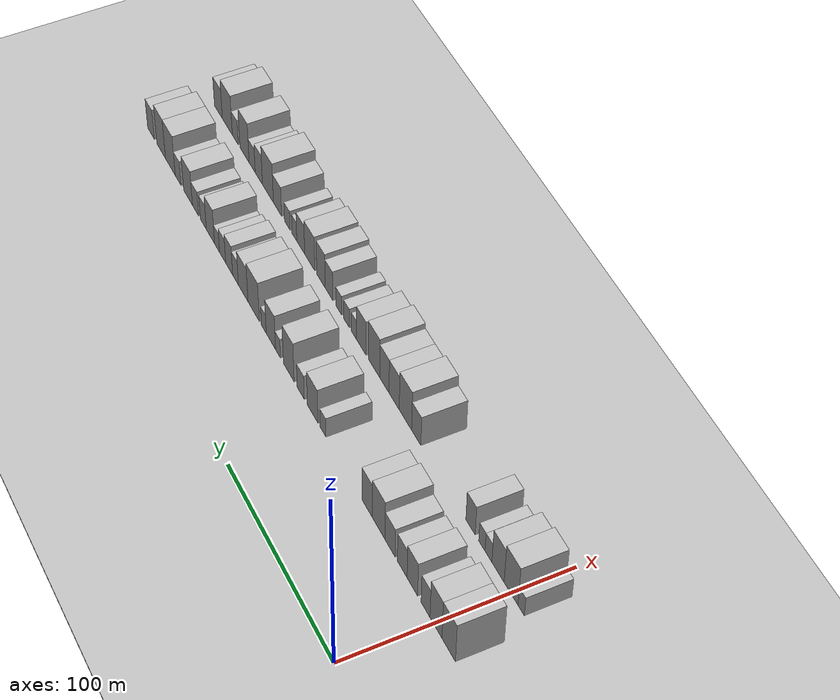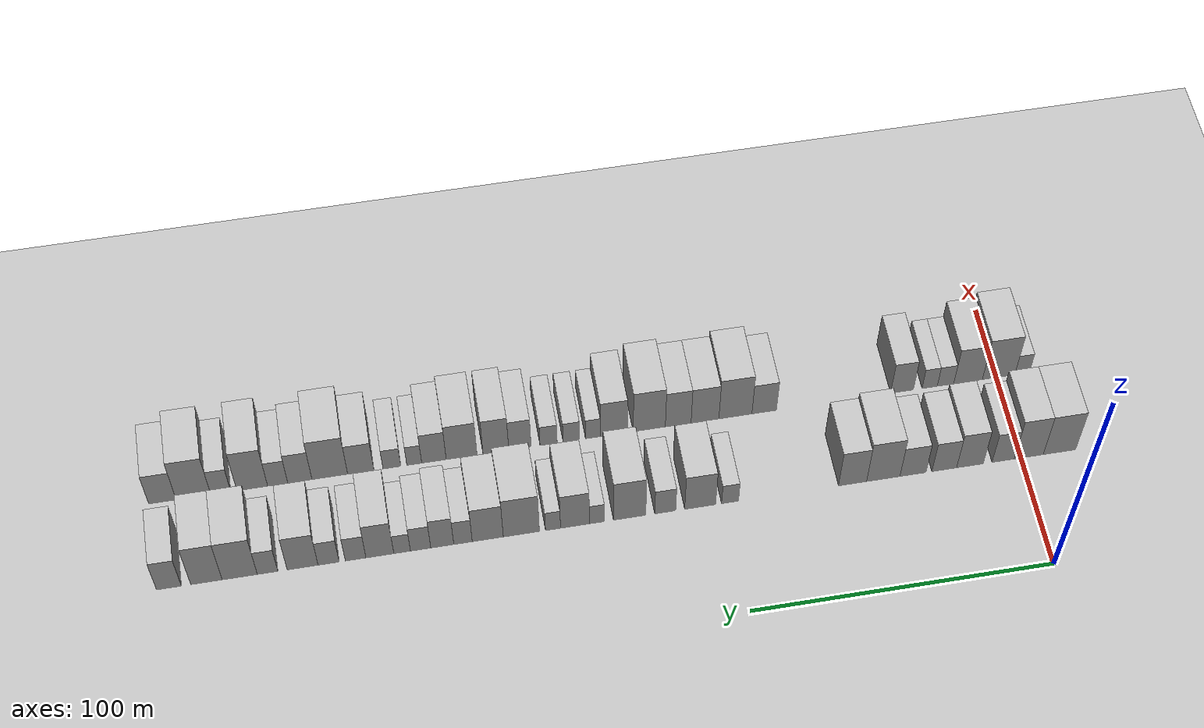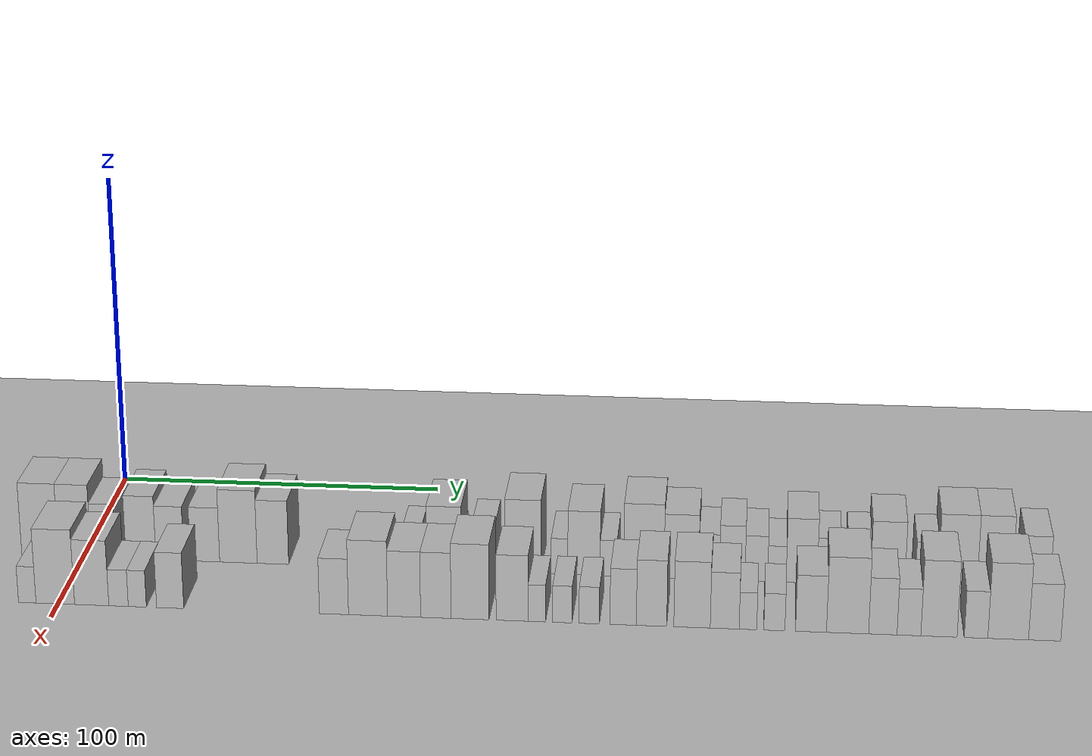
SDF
<sdf version="1.6">
 <world name="default">
  <include><name>ground_plane_1</name><uri>model://HANNAS_ground_plane</uri></include>
  <include>
   <name>ground_plane_2</name>
   <uri>model://HANNAS_ground_plane</uri>
   <pose>100 0 0  0 0 0</pose>
  </include>
  <model name="building_30">
   <static>1</static>
   <pose>50.0000 -12.9464 0 0.000000 0.000000 0.000000</pose>
   <link name="link">
    <pose>0 0 12.00 0 0 0</pose>
    <collision name="collision"><geometry><box><size>20.0000 11.1657 24.0000</size></box></geometry></collision>
    <visual name="visual">
     <cast_shadows>0</cast_shadows>
     <geometry><box><size>20.0000 11.1657 24.0000</size></box></geometry>
     <material>
      <script>
       <uri>model://HANNAS_wall/materials/scripts</uri>
       <uri>model://HANNAS_wall/materials/textures</uri>
       <name>vrc/HANNAS_wall</name>
      </script>
     </material>
    </visual>
   </link>
  </model>
  <model name="building_31">
   <static>1</static>
   <pose>50.0000 -2.3868 0 0.000000 0.000000 0.000000</pose>
   <link name="link">
    <pose>0 0 12.00 0 0 0</pose>
    <collision name="collision"><geometry><box><size>20.0000 9.9533 24.0000</size></box></geometry></collision>
    <visual name="visual">
     <cast_shadows>0</cast_shadows>
     <geometry><box><size>20.0000 9.9533 24.0000</size></box></geometry>
     <material>
      <script>
       <uri>model://HANNAS_wall/materials/scripts</uri>
       <uri>model://HANNAS_wall/materials/textures</uri>
       <name>vrc/HANNAS_wall</name>
      </script>
     </material>
    </visual>
   </link>
  </model>
  <model name="building_32">
   <static>1</static>
   <pose>50.0000 6.3750 0 0.000000 0.000000 0.000000</pose>
   <link name="link">
    <pose>0 0 9.00 0 0 0</pose>
    <collision name="collision"><geometry><box><size>20.0000 7.5704 18.0000</size></box></geometry></collision>
    <visual name="visual">
     <cast_shadows>0</cast_shadows>
     <geometry><box><size>20.0000 7.5704 18.0000</size></box></geometry>
     <material>
      <script>
       <uri>model://HANNAS_wall/materials/scripts</uri>
       <uri>model://HANNAS_wall/materials/textures</uri>
       <name>vrc/HANNAS_wall</name>
      </script>
     </material>
    </visual>
   </link>
  </model>
  <model name="building_33">
   <static>1</static>
   <pose>50.0000 17.7057 0 0.000000 0.000000 0.000000</pose>
   <link name="link">
    <pose>0 0 10.50 0 0 0</pose>
    <collision name="collision"><geometry><box><size>20.0000 9.0910 21.0000</size></box></geometry></collision>
    <visual name="visual">
     <cast_shadows>0</cast_shadows>
     <geometry><box><size>20.0000 9.0910 21.0000</size></box></geometry>
     <material>
      <script>
       <uri>model://HANNAS_wall/materials/scripts</uri>
       <uri>model://HANNAS_wall/materials/textures</uri>
       <name>vrc/HANNAS_wall</name>
      </script>
     </material>
    </visual>
   </link>
  </model>
  <model name="building_34">
   <static>1</static>
   <pose>50.0000 26.4657 0 0.000000 0.000000 0.000000</pose>
   <link name="link">
    <pose>0 0 9.00 0 0 0</pose>
    <collision name="collision"><geometry><box><size>20.0000 8.4290 18.0000</size></box></geometry></collision>
    <visual name="visual">
     <cast_shadows>0</cast_shadows>
     <geometry><box><size>20.0000 8.4290 18.0000</size></box></geometry>
     <material>
      <script>
       <uri>model://HANNAS_wall/materials/scripts</uri>
       <uri>model://HANNAS_wall/materials/textures</uri>
       <name>vrc/HANNAS_wall</name>
      </script>
     </material>
    </visual>
   </link>
  </model>
  <model name="building_35">
   <static>1</static>
   <pose>50.0000 37.0979 0 0.000000 0.000000 0.000000</pose>
   <link name="link">
    <pose>0 0 9.00 0 0 0</pose>
    <collision name="collision"><geometry><box><size>20.0000 8.8355 18.0000</size></box></geometry></collision>
    <visual name="visual">
     <cast_shadows>0</cast_shadows>
     <geometry><box><size>20.0000 8.8355 18.0000</size></box></geometry>
     <material>
      <script>
       <uri>model://HANNAS_wall/materials/scripts</uri>
       <uri>model://HANNAS_wall/materials/textures</uri>
       <name>vrc/HANNAS_wall</name>
      </script>
     </material>
    </visual>
   </link>
  </model>
  <model name="building_36">
   <static>1</static>
   <pose>50.0000 47.1653 0 0.000000 0.000000 0.000000</pose>
   <link name="link">
    <pose>0 0 12.00 0 0 0</pose>
    <collision name="collision"><geometry><box><size>20.0000 11.2991 24.0000</size></box></geometry></collision>
    <visual name="visual">
     <cast_shadows>0</cast_shadows>
     <geometry><box><size>20.0000 11.2991 24.0000</size></box></geometry>
     <material>
      <script>
       <uri>model://HANNAS_wall/materials/scripts</uri>
       <uri>model://HANNAS_wall/materials/textures</uri>
       <name>vrc/HANNAS_wall</name>
      </script>
     </material>
    </visual>
   </link>
  </model>
  <model name="building_37">
   <static>1</static>
   <pose>50.0000 57.5591 0 0.000000 0.000000 0.000000</pose>
   <link name="link">
    <pose>0 0 10.50 0 0 0</pose>
    <collision name="collision"><geometry><box><size>20.0000 9.4886 21.0000</size></box></geometry></collision>
    <visual name="visual">
     <cast_shadows>0</cast_shadows>
     <geometry><box><size>20.0000 9.4886 21.0000</size></box></geometry>
     <material>
      <script>
       <uri>model://HANNAS_wall/materials/scripts</uri>
       <uri>model://HANNAS_wall/materials/textures</uri>
       <name>vrc/HANNAS_wall</name>
      </script>
     </material>
    </visual>
   </link>
  </model>
  <model name="building_38">
   <static>1</static>
   <pose>50.0000 98.7756 0 0.000000 0.000000 0.000000</pose>
   <link name="link">
    <pose>0 0 6.00 0 0 0</pose>
    <collision name="collision"><geometry><box><size>20.0000 5.6481 12.0000</size></box></geometry></collision>
    <visual name="visual">
     <cast_shadows>0</cast_shadows>
     <geometry><box><size>20.0000 5.6481 12.0000</size></box></geometry>
     <material>
      <script>
       <uri>model://HANNAS_wall/materials/scripts</uri>
       <uri>model://HANNAS_wall/materials/textures</uri>
       <name>vrc/HANNAS_wall</name>
      </script>
     </material>
    </visual>
   </link>
  </model>
  <model name="building_39">
   <static>1</static>
   <pose>50.0000 108.7570 0 0.000000 0.000000 0.000000</pose>
   <link name="link">
    <pose>0 0 10.50 0 0 0</pose>
    <collision name="collision"><geometry><box><size>20.0000 10.3148 21.0000</size></box></geometry></collision>
    <visual name="visual">
     <cast_shadows>0</cast_shadows>
     <geometry><box><size>20.0000 10.3148 21.0000</size></box></geometry>
     <material>
      <script>
       <uri>model://HANNAS_wall/materials/scripts</uri>
       <uri>model://HANNAS_wall/materials/textures</uri>
       <name>vrc/HANNAS_wall</name>
      </script>
     </material>
    </visual>
   </link>
  </model>
  <model name="building_40">
   <static>1</static>
   <pose>50.0000 120.3956 0 0.000000 0.000000 0.000000</pose>
   <link name="link">
    <pose>0 0 7.50 0 0 0</pose>
    <collision name="collision"><geometry><box><size>20.0000 6.9623 15.0000</size></box></geometry></collision>
    <visual name="visual">
     <cast_shadows>0</cast_shadows>
     <geometry><box><size>20.0000 6.9623 15.0000</size></box></geometry>
     <material>
      <script>
       <uri>model://HANNAS_wall/materials/scripts</uri>
       <uri>model://HANNAS_wall/materials/textures</uri>
       <name>vrc/HANNAS_wall</name>
      </script>
     </material>
    </visual>
   </link>
  </model>
  <model name="building_41">
   <static>1</static>
   <pose>50.0000 132.2311 0 0.000000 0.000000 0.000000</pose>
   <link name="link">
    <pose>0 0 12.00 0 0 0</pose>
    <collision name="collision"><geometry><box><size>20.0000 10.7086 24.0000</size></box></geometry></collision>
    <visual name="visual">
     <cast_shadows>0</cast_shadows>
     <geometry><box><size>20.0000 10.7086 24.0000</size></box></geometry>
     <material>
      <script>
       <uri>model://HANNAS_wall/materials/scripts</uri>
       <uri>model://HANNAS_wall/materials/textures</uri>
       <name>vrc/HANNAS_wall</name>
      </script>
     </material>
    </visual>
   </link>
  </model>
  <model name="building_42">
   <static>1</static>
   <pose>50.0000 143.0597 0 0.000000 0.000000 0.000000</pose>
   <link name="link">
    <pose>0 0 6.00 0 0 0</pose>
    <collision name="collision"><geometry><box><size>20.0000 4.9486 12.0000</size></box></geometry></collision>
    <visual name="visual">
     <cast_shadows>0</cast_shadows>
     <geometry><box><size>20.0000 4.9486 12.0000</size></box></geometry>
     <material>
      <script>
       <uri>model://HANNAS_wall/materials/scripts</uri>
       <uri>model://HANNAS_wall/materials/textures</uri>
       <name>vrc/HANNAS_wall</name>
      </script>
     </material>
    </visual>
   </link>
  </model>
  <model name="building_43">
   <static>1</static>
   <pose>50.0000 150.3219 0 0.000000 0.000000 0.000000</pose>
   <link name="link">
    <pose>0 0 10.50 0 0 0</pose>
    <collision name="collision"><geometry><box><size>20.0000 9.5759 21.0000</size></box></geometry></collision>
    <visual name="visual">
     <cast_shadows>0</cast_shadows>
     <geometry><box><size>20.0000 9.5759 21.0000</size></box></geometry>
     <material>
      <script>
       <uri>model://HANNAS_wall/materials/scripts</uri>
       <uri>model://HANNAS_wall/materials/textures</uri>
       <name>vrc/HANNAS_wall</name>
      </script>
     </material>
    </visual>
   </link>
  </model>
  <model name="building_44">
   <static>1</static>
   <pose>50.0000 157.5859 0 0.000000 0.000000 0.000000</pose>
   <link name="link">
    <pose>0 0 6.00 0 0 0</pose>
    <collision name="collision"><geometry><box><size>20.0000 4.9522 12.0000</size></box></geometry></collision>
    <visual name="visual">
     <cast_shadows>0</cast_shadows>
     <geometry><box><size>20.0000 4.9522 12.0000</size></box></geometry>
     <material>
      <script>
       <uri>model://HANNAS_wall/materials/scripts</uri>
       <uri>model://HANNAS_wall/materials/textures</uri>
       <name>vrc/HANNAS_wall</name>
      </script>
     </material>
    </visual>
   </link>
  </model>
  <model name="building_45">
   <static>1</static>
   <pose>50.0000 168.0067 0 0.000000 0.000000 0.000000</pose>
   <link name="link">
    <pose>0 0 12.00 0 0 0</pose>
    <collision name="collision"><geometry><box><size>20.0000 11.8894 24.0000</size></box></geometry></collision>
    <visual name="visual">
     <cast_shadows>0</cast_shadows>
     <geometry><box><size>20.0000 11.8894 24.0000</size></box></geometry>
     <material>
      <script>
       <uri>model://HANNAS_wall/materials/scripts</uri>
       <uri>model://HANNAS_wall/materials/textures</uri>
       <name>vrc/HANNAS_wall</name>
      </script>
     </material>
    </visual>
   </link>
  </model>
  <model name="building_46">
   <static>1</static>
   <pose>50.0000 179.0463 0 0.000000 0.000000 0.000000</pose>
   <link name="link">
    <pose>0 0 10.50 0 0 0</pose>
    <collision name="collision"><geometry><box><size>20.0000 10.1898 21.0000</size></box></geometry></collision>
    <visual name="visual">
     <cast_shadows>0</cast_shadows>
     <geometry><box><size>20.0000 10.1898 21.0000</size></box></geometry>
     <material>
      <script>
       <uri>model://HANNAS_wall/materials/scripts</uri>
       <uri>model://HANNAS_wall/materials/textures</uri>
       <name>vrc/HANNAS_wall</name>
      </script>
     </material>
    </visual>
   </link>
  </model>
  <model name="building_47">
   <static>1</static>
   <pose>50.0000 187.1726 0 0.000000 0.000000 0.000000</pose>
   <link name="link">
    <pose>0 0 7.50 0 0 0</pose>
    <collision name="collision"><geometry><box><size>20.0000 6.0628 15.0000</size></box></geometry></collision>
    <visual name="visual">
     <cast_shadows>0</cast_shadows>
     <geometry><box><size>20.0000 6.0628 15.0000</size></box></geometry>
     <material>
      <script>
       <uri>model://HANNAS_wall/materials/scripts</uri>
       <uri>model://HANNAS_wall/materials/textures</uri>
       <name>vrc/HANNAS_wall</name>
      </script>
     </material>
    </visual>
   </link>
  </model>
  <model name="building_48">
   <static>1</static>
   <pose>50.0000 193.9692 0 0.000000 0.000000 0.000000</pose>
   <link name="link">
    <pose>0 0 9.00 0 0 0</pose>
    <collision name="collision"><geometry><box><size>20.0000 7.5304 18.0000</size></box></geometry></collision>
    <visual name="visual">
     <cast_shadows>0</cast_shadows>
     <geometry><box><size>20.0000 7.5304 18.0000</size></box></geometry>
     <material>
      <script>
       <uri>model://HANNAS_wall/materials/scripts</uri>
       <uri>model://HANNAS_wall/materials/textures</uri>
       <name>vrc/HANNAS_wall</name>
      </script>
     </material>
    </visual>
   </link>
  </model>
  <model name="building_49">
   <static>1</static>
   <pose>50.0000 201.0462 0 0.000000 0.000000 0.000000</pose>
   <link name="link">
    <pose>0 0 7.50 0 0 0</pose>
    <collision name="collision"><geometry><box><size>20.0000 6.6235 15.0000</size></box></geometry></collision>
    <visual name="visual">
     <cast_shadows>0</cast_shadows>
     <geometry><box><size>20.0000 6.6235 15.0000</size></box></geometry>
     <material>
      <script>
       <uri>model://HANNAS_wall/materials/scripts</uri>
       <uri>model://HANNAS_wall/materials/textures</uri>
       <name>vrc/HANNAS_wall</name>
      </script>
     </material>
    </visual>
   </link>
  </model>
  <model name="building_50">
   <static>1</static>
   <pose>50.0000 207.0693 0 0.000000 0.000000 0.000000</pose>
   <link name="link">
    <pose>0 0 6.00 0 0 0</pose>
    <collision name="collision"><geometry><box><size>20.0000 5.4227 12.0000</size></box></geometry></collision>
    <visual name="visual">
     <cast_shadows>0</cast_shadows>
     <geometry><box><size>20.0000 5.4227 12.0000</size></box></geometry>
     <material>
      <script>
       <uri>model://HANNAS_wall/materials/scripts</uri>
       <uri>model://HANNAS_wall/materials/textures</uri>
       <name>vrc/HANNAS_wall</name>
      </script>
     </material>
    </visual>
   </link>
  </model>
  <model name="building_51">
   <static>1</static>
   <pose>50.0000 214.3132 0 0.000000 0.000000 0.000000</pose>
   <link name="link">
    <pose>0 0 10.50 0 0 0</pose>
    <collision name="collision"><geometry><box><size>20.0000 9.0652 21.0000</size></box></geometry></collision>
    <visual name="visual">
     <cast_shadows>0</cast_shadows>
     <geometry><box><size>20.0000 9.0652 21.0000</size></box></geometry>
     <material>
      <script>
       <uri>model://HANNAS_wall/materials/scripts</uri>
       <uri>model://HANNAS_wall/materials/textures</uri>
       <name>vrc/HANNAS_wall</name>
      </script>
     </material>
    </visual>
   </link>
  </model>
  <model name="building_52">
   <static>1</static>
   <pose>50.0000 222.1941 0 0.000000 0.000000 0.000000</pose>
   <link name="link">
    <pose>0 0 7.50 0 0 0</pose>
    <collision name="collision"><geometry><box><size>20.0000 6.6967 15.0000</size></box></geometry></collision>
    <visual name="visual">
     <cast_shadows>0</cast_shadows>
     <geometry><box><size>20.0000 6.6967 15.0000</size></box></geometry>
     <material>
      <script>
       <uri>model://HANNAS_wall/materials/scripts</uri>
       <uri>model://HANNAS_wall/materials/textures</uri>
       <name>vrc/HANNAS_wall</name>
      </script>
     </material>
    </visual>
   </link>
  </model>
  <model name="building_53">
   <static>1</static>
   <pose>50.0000 230.9654 0 0.000000 0.000000 0.000000</pose>
   <link name="link">
    <pose>0 0 7.50 0 0 0</pose>
    <collision name="collision"><geometry><box><size>20.0000 6.8459 15.0000</size></box></geometry></collision>
    <visual name="visual">
     <cast_shadows>0</cast_shadows>
     <geometry><box><size>20.0000 6.8459 15.0000</size></box></geometry>
     <material>
      <script>
       <uri>model://HANNAS_wall/materials/scripts</uri>
       <uri>model://HANNAS_wall/materials/textures</uri>
       <name>vrc/HANNAS_wall</name>
      </script>
     </material>
    </visual>
   </link>
  </model>
  <model name="building_54">
   <static>1</static>
   <pose>50.0000 239.3948 0 0.000000 0.000000 0.000000</pose>
   <link name="link">
    <pose>0 0 10.50 0 0 0</pose>
    <collision name="collision"><geometry><box><size>20.0000 10.0129 21.0000</size></box></geometry></collision>
    <visual name="visual">
     <cast_shadows>0</cast_shadows>
     <geometry><box><size>20.0000 10.0129 21.0000</size></box></geometry>
     <material>
      <script>
       <uri>model://HANNAS_wall/materials/scripts</uri>
       <uri>model://HANNAS_wall/materials/textures</uri>
       <name>vrc/HANNAS_wall</name>
      </script>
     </material>
    </visual>
   </link>
  </model>
  <model name="building_55">
   <static>1</static>
   <pose>50.0000 250.7144 0 0.000000 0.000000 0.000000</pose>
   <link name="link">
    <pose>0 0 7.50 0 0 0</pose>
    <collision name="collision"><geometry><box><size>20.0000 6.6265 15.0000</size></box></geometry></collision>
    <visual name="visual">
     <cast_shadows>0</cast_shadows>
     <geometry><box><size>20.0000 6.6265 15.0000</size></box></geometry>
     <material>
      <script>
       <uri>model://HANNAS_wall/materials/scripts</uri>
       <uri>model://HANNAS_wall/materials/textures</uri>
       <name>vrc/HANNAS_wall</name>
      </script>
     </material>
    </visual>
   </link>
  </model>
  <model name="building_56">
   <static>1</static>
   <pose>50.0000 259.6921 0 0.000000 0.000000 0.000000</pose>
   <link name="link">
    <pose>0 0 12.00 0 0 0</pose>
    <collision name="collision"><geometry><box><size>20.0000 11.3289 24.0000</size></box></geometry></collision>
    <visual name="visual">
     <cast_shadows>0</cast_shadows>
     <geometry><box><size>20.0000 11.3289 24.0000</size></box></geometry>
     <material>
      <script>
       <uri>model://HANNAS_wall/materials/scripts</uri>
       <uri>model://HANNAS_wall/materials/textures</uri>
       <name>vrc/HANNAS_wall</name>
      </script>
     </material>
    </visual>
   </link>
  </model>
  <model name="building_57">
   <static>1</static>
   <pose>50.0000 270.4050 0 0.000000 0.000000 0.000000</pose>
   <link name="link">
    <pose>0 0 12.00 0 0 0</pose>
    <collision name="collision"><geometry><box><size>20.0000 10.0969 24.0000</size></box></geometry></collision>
    <visual name="visual">
     <cast_shadows>0</cast_shadows>
     <geometry><box><size>20.0000 10.0969 24.0000</size></box></geometry>
     <material>
      <script>
       <uri>model://HANNAS_wall/materials/scripts</uri>
       <uri>model://HANNAS_wall/materials/textures</uri>
       <name>vrc/HANNAS_wall</name>
      </script>
     </material>
    </visual>
   </link>
  </model>
  <model name="building_58">
   <static>1</static>
   <pose>50.0000 282.4318 0 0.000000 0.000000 0.000000</pose>
   <link name="link">
    <pose>0 0 9.00 0 0 0</pose>
    <collision name="collision"><geometry><box><size>20.0000 7.9568 18.0000</size></box></geometry></collision>
    <visual name="visual">
     <cast_shadows>0</cast_shadows>
     <geometry><box><size>20.0000 7.9568 18.0000</size></box></geometry>
     <material>
      <script>
       <uri>model://HANNAS_wall/materials/scripts</uri>
       <uri>model://HANNAS_wall/materials/textures</uri>
       <name>vrc/HANNAS_wall</name>
      </script>
     </material>
    </visual>
   </link>
  </model>
  <model name="building_88">
   <static>1</static>
   <pose>82.0000 -8.8257 0 0.000000 0.000000 0.000000</pose>
   <link name="link">
    <pose>0 0 6.00 0 0 0</pose>
    <collision name="collision"><geometry><box><size>20.0000 5.1446 12.0000</size></box></geometry></collision>
    <visual name="visual">
     <cast_shadows>0</cast_shadows>
     <geometry><box><size>20.0000 5.1446 12.0000</size></box></geometry>
     <material>
      <script>
       <uri>model://HANNAS_wall/materials/scripts</uri>
       <uri>model://HANNAS_wall/materials/textures</uri>
       <name>vrc/HANNAS_wall</name>
      </script>
     </material>
    </visual>
   </link>
  </model>
  <model name="building_89">
   <static>1</static>
   <pose>82.0000 -0.5891 0 0.000000 0.000000 0.000000</pose>
   <link name="link">
    <pose>0 0 12.00 0 0 0</pose>
    <collision name="collision"><geometry><box><size>20.0000 11.3286 24.0000</size></box></geometry></collision>
    <visual name="visual">
     <cast_shadows>0</cast_shadows>
     <geometry><box><size>20.0000 11.3286 24.0000</size></box></geometry>
     <material>
      <script>
       <uri>model://HANNAS_wall/materials/scripts</uri>
       <uri>model://HANNAS_wall/materials/textures</uri>
       <name>vrc/HANNAS_wall</name>
      </script>
     </material>
    </visual>
   </link>
  </model>
  <model name="building_90">
   <static>1</static>
   <pose>82.0000 10.0945 0 0.000000 0.000000 0.000000</pose>
   <link name="link">
    <pose>0 0 10.50 0 0 0</pose>
    <collision name="collision"><geometry><box><size>20.0000 10.0385 21.0000</size></box></geometry></collision>
    <visual name="visual">
     <cast_shadows>0</cast_shadows>
     <geometry><box><size>20.0000 10.0385 21.0000</size></box></geometry>
     <material>
      <script>
       <uri>model://HANNAS_wall/materials/scripts</uri>
       <uri>model://HANNAS_wall/materials/textures</uri>
       <name>vrc/HANNAS_wall</name>
      </script>
     </material>
    </visual>
   </link>
  </model>
  <model name="building_91">
   <static>1</static>
   <pose>82.0000 17.9602 0 0.000000 0.000000 0.000000</pose>
   <link name="link">
    <pose>0 0 6.00 0 0 0</pose>
    <collision name="collision"><geometry><box><size>20.0000 5.6930 12.0000</size></box></geometry></collision>
    <visual name="visual">
     <cast_shadows>0</cast_shadows>
     <geometry><box><size>20.0000 5.6930 12.0000</size></box></geometry>
     <material>
      <script>
       <uri>model://HANNAS_wall/materials/scripts</uri>
       <uri>model://HANNAS_wall/materials/textures</uri>
       <name>vrc/HANNAS_wall</name>
      </script>
     </material>
    </visual>
   </link>
  </model>
  <model name="building_92">
   <static>1</static>
   <pose>82.0000 23.4496 0 0.000000 0.000000 0.000000</pose>
   <link name="link">
    <pose>0 0 6.00 0 0 0</pose>
    <collision name="collision"><geometry><box><size>20.0000 5.2859 12.0000</size></box></geometry></collision>
    <visual name="visual">
     <cast_shadows>0</cast_shadows>
     <geometry><box><size>20.0000 5.2859 12.0000</size></box></geometry>
     <material>
      <script>
       <uri>model://HANNAS_wall/materials/scripts</uri>
       <uri>model://HANNAS_wall/materials/textures</uri>
       <name>vrc/HANNAS_wall</name>
      </script>
     </material>
    </visual>
   </link>
  </model>
  <model name="building_93">
   <static>1</static>
   <pose>82.0000 33.0569 0 0.000000 0.000000 0.000000</pose>
   <link name="link">
    <pose>0 0 9.00 0 0 0</pose>
    <collision name="collision"><geometry><box><size>20.0000 7.9286 18.0000</size></box></geometry></collision>
    <visual name="visual">
     <cast_shadows>0</cast_shadows>
     <geometry><box><size>20.0000 7.9286 18.0000</size></box></geometry>
     <material>
      <script>
       <uri>model://HANNAS_wall/materials/scripts</uri>
       <uri>model://HANNAS_wall/materials/textures</uri>
       <name>vrc/HANNAS_wall</name>
      </script>
     </material>
    </visual>
   </link>
  </model>
  <model name="building_94">
   <static>1</static>
   <pose>82.0000 80.6333 0 0.000000 0.000000 0.000000</pose>
   <link name="link">
    <pose>0 0 9.00 0 0 0</pose>
    <collision name="collision"><geometry><box><size>20.0000 8.4081 18.0000</size></box></geometry></collision>
    <visual name="visual">
     <cast_shadows>0</cast_shadows>
     <geometry><box><size>20.0000 8.4081 18.0000</size></box></geometry>
     <material>
      <script>
       <uri>model://HANNAS_wall/materials/scripts</uri>
       <uri>model://HANNAS_wall/materials/textures</uri>
       <name>vrc/HANNAS_wall</name>
      </script>
     </material>
    </visual>
   </link>
  </model>
  <model name="building_95">
   <static>1</static>
   <pose>82.0000 90.4932 0 0.000000 0.000000 0.000000</pose>
   <link name="link">
    <pose>0 0 12.00 0 0 0</pose>
    <collision name="collision"><geometry><box><size>20.0000 11.3116 24.0000</size></box></geometry></collision>
    <visual name="visual">
     <cast_shadows>0</cast_shadows>
     <geometry><box><size>20.0000 11.3116 24.0000</size></box></geometry>
     <material>
      <script>
       <uri>model://HANNAS_wall/materials/scripts</uri>
       <uri>model://HANNAS_wall/materials/textures</uri>
       <name>vrc/HANNAS_wall</name>
      </script>
     </material>
    </visual>
   </link>
  </model>
  <model name="building_96">
   <static>1</static>
   <pose>82.0000 100.8941 0 0.000000 0.000000 0.000000</pose>
   <link name="link">
    <pose>0 0 10.50 0 0 0</pose>
    <collision name="collision"><geometry><box><size>20.0000 9.4903 21.0000</size></box></geometry></collision>
    <visual name="visual">
     <cast_shadows>0</cast_shadows>
     <geometry><box><size>20.0000 9.4903 21.0000</size></box></geometry>
     <material>
      <script>
       <uri>model://HANNAS_wall/materials/scripts</uri>
       <uri>model://HANNAS_wall/materials/textures</uri>
       <name>vrc/HANNAS_wall</name>
      </script>
     </material>
    </visual>
   </link>
  </model>
  <model name="building_97">
   <static>1</static>
   <pose>82.0000 110.0233 0 0.000000 0.000000 0.000000</pose>
   <link name="link">
    <pose>0 0 10.50 0 0 0</pose>
    <collision name="collision"><geometry><box><size>20.0000 8.7681 21.0000</size></box></geometry></collision>
    <visual name="visual">
     <cast_shadows>0</cast_shadows>
     <geometry><box><size>20.0000 8.7681 21.0000</size></box></geometry>
     <material>
      <script>
       <uri>model://HANNAS_wall/materials/scripts</uri>
       <uri>model://HANNAS_wall/materials/textures</uri>
       <name>vrc/HANNAS_wall</name>
      </script>
     </material>
    </visual>
   </link>
  </model>
  <model name="building_98">
   <static>1</static>
   <pose>82.0000 119.8668 0 0.000000 0.000000 0.000000</pose>
   <link name="link">
    <pose>0 0 12.00 0 0 0</pose>
    <collision name="collision"><geometry><box><size>20.0000 10.9188 24.0000</size></box></geometry></collision>
    <visual name="visual">
     <cast_shadows>0</cast_shadows>
     <geometry><box><size>20.0000 10.9188 24.0000</size></box></geometry>
     <material>
      <script>
       <uri>model://HANNAS_wall/materials/scripts</uri>
       <uri>model://HANNAS_wall/materials/textures</uri>
       <name>vrc/HANNAS_wall</name>
      </script>
     </material>
    </visual>
   </link>
  </model>
  <model name="building_99">
   <static>1</static>
   <pose>82.0000 131.8981 0 0.000000 0.000000 0.000000</pose>
   <link name="link">
    <pose>0 0 10.50 0 0 0</pose>
    <collision name="collision"><geometry><box><size>20.0000 9.1439 21.0000</size></box></geometry></collision>
    <visual name="visual">
     <cast_shadows>0</cast_shadows>
     <geometry><box><size>20.0000 9.1439 21.0000</size></box></geometry>
     <material>
      <script>
       <uri>model://HANNAS_wall/materials/scripts</uri>
       <uri>model://HANNAS_wall/materials/textures</uri>
       <name>vrc/HANNAS_wall</name>
      </script>
     </material>
    </visual>
   </link>
  </model>
  <model name="building_100">
   <static>1</static>
   <pose>82.0000 138.9811 0 0.000000 0.000000 0.000000</pose>
   <link name="link">
    <pose>0 0 6.00 0 0 0</pose>
    <collision name="collision"><geometry><box><size>20.0000 5.0221 12.0000</size></box></geometry></collision>
    <visual name="visual">
     <cast_shadows>0</cast_shadows>
     <geometry><box><size>20.0000 5.0221 12.0000</size></box></geometry>
     <material>
      <script>
       <uri>model://HANNAS_wall/materials/scripts</uri>
       <uri>model://HANNAS_wall/materials/textures</uri>
       <name>vrc/HANNAS_wall</name>
      </script>
     </material>
    </visual>
   </link>
  </model>
  <model name="building_101">
   <static>1</static>
   <pose>82.0000 146.2771 0 0.000000 0.000000 0.000000</pose>
   <link name="link">
    <pose>0 0 6.00 0 0 0</pose>
    <collision name="collision"><geometry><box><size>20.0000 5.5698 12.0000</size></box></geometry></collision>
    <visual name="visual">
     <cast_shadows>0</cast_shadows>
     <geometry><box><size>20.0000 5.5698 12.0000</size></box></geometry>
     <material>
      <script>
       <uri>model://HANNAS_wall/materials/scripts</uri>
       <uri>model://HANNAS_wall/materials/textures</uri>
       <name>vrc/HANNAS_wall</name>
      </script>
     </material>
    </visual>
   </link>
  </model>
  <model name="building_102">
   <static>1</static>
   <pose>82.0000 153.9605 0 0.000000 0.000000 0.000000</pose>
   <link name="link">
    <pose>0 0 6.00 0 0 0</pose>
    <collision name="collision"><geometry><box><size>20.0000 5.7971 12.0000</size></box></geometry></collision>
    <visual name="visual">
     <cast_shadows>0</cast_shadows>
     <geometry><box><size>20.0000 5.7971 12.0000</size></box></geometry>
     <material>
      <script>
       <uri>model://HANNAS_wall/materials/scripts</uri>
       <uri>model://HANNAS_wall/materials/textures</uri>
       <name>vrc/HANNAS_wall</name>
      </script>
     </material>
    </visual>
   </link>
  </model>
  <model name="building_103">
   <static>1</static>
   <pose>82.0000 163.6198 0 0.000000 0.000000 0.000000</pose>
   <link name="link">
    <pose>0 0 9.00 0 0 0</pose>
    <collision name="collision"><geometry><box><size>20.0000 7.5215 18.0000</size></box></geometry></collision>
    <visual name="visual">
     <cast_shadows>0</cast_shadows>
     <geometry><box><size>20.0000 7.5215 18.0000</size></box></geometry>
     <material>
      <script>
       <uri>model://HANNAS_wall/materials/scripts</uri>
       <uri>model://HANNAS_wall/materials/textures</uri>
       <name>vrc/HANNAS_wall</name>
      </script>
     </material>
    </visual>
   </link>
  </model>
  <model name="building_104">
   <static>1</static>
   <pose>82.0000 171.7007 0 0.000000 0.000000 0.000000</pose>
   <link name="link">
    <pose>0 0 10.50 0 0 0</pose>
    <collision name="collision"><geometry><box><size>20.0000 8.6402 21.0000</size></box></geometry></collision>
    <visual name="visual">
     <cast_shadows>0</cast_shadows>
     <geometry><box><size>20.0000 8.6402 21.0000</size></box></geometry>
     <material>
      <script>
       <uri>model://HANNAS_wall/materials/scripts</uri>
       <uri>model://HANNAS_wall/materials/textures</uri>
       <name>vrc/HANNAS_wall</name>
      </script>
     </material>
    </visual>
   </link>
  </model>
  <model name="building_105">
   <static>1</static>
   <pose>82.0000 183.1889 0 0.000000 0.000000 0.000000</pose>
   <link name="link">
    <pose>0 0 10.50 0 0 0</pose>
    <collision name="collision"><geometry><box><size>20.0000 10.3363 21.0000</size></box></geometry></collision>
    <visual name="visual">
     <cast_shadows>0</cast_shadows>
     <geometry><box><size>20.0000 10.3363 21.0000</size></box></geometry>
     <material>
      <script>
       <uri>model://HANNAS_wall/materials/scripts</uri>
       <uri>model://HANNAS_wall/materials/textures</uri>
       <name>vrc/HANNAS_wall</name>
      </script>
     </material>
    </visual>
   </link>
  </model>
  <model name="building_106">
   <static>1</static>
   <pose>82.0000 192.4536 0 0.000000 0.000000 0.000000</pose>
   <link name="link">
    <pose>0 0 9.00 0 0 0</pose>
    <collision name="collision"><geometry><box><size>20.0000 8.1932 18.0000</size></box></geometry></collision>
    <visual name="visual">
     <cast_shadows>0</cast_shadows>
     <geometry><box><size>20.0000 8.1932 18.0000</size></box></geometry>
     <material>
      <script>
       <uri>model://HANNAS_wall/materials/scripts</uri>
       <uri>model://HANNAS_wall/materials/textures</uri>
       <name>vrc/HANNAS_wall</name>
      </script>
     </material>
    </visual>
   </link>
  </model>
  <model name="building_107">
   <static>1</static>
   <pose>82.0000 199.0302 0 0.000000 0.000000 0.000000</pose>
   <link name="link">
    <pose>0 0 6.00 0 0 0</pose>
    <collision name="collision"><geometry><box><size>20.0000 4.9599 12.0000</size></box></geometry></collision>
    <visual name="visual">
     <cast_shadows>0</cast_shadows>
     <geometry><box><size>20.0000 4.9599 12.0000</size></box></geometry>
     <material>
      <script>
       <uri>model://HANNAS_wall/materials/scripts</uri>
       <uri>model://HANNAS_wall/materials/textures</uri>
       <name>vrc/HANNAS_wall</name>
      </script>
     </material>
    </visual>
   </link>
  </model>
  <model name="building_108">
   <static>1</static>
   <pose>82.0000 206.4875 0 0.000000 0.000000 0.000000</pose>
   <link name="link">
    <pose>0 0 6.00 0 0 0</pose>
    <collision name="collision"><geometry><box><size>20.0000 5.9547 12.0000</size></box></geometry></collision>
    <visual name="visual">
     <cast_shadows>0</cast_shadows>
     <geometry><box><size>20.0000 5.9547 12.0000</size></box></geometry>
     <material>
      <script>
       <uri>model://HANNAS_wall/materials/scripts</uri>
       <uri>model://HANNAS_wall/materials/textures</uri>
       <name>vrc/HANNAS_wall</name>
      </script>
     </material>
    </visual>
   </link>
  </model>
  <model name="building_109">
   <static>1</static>
   <pose>82.0000 216.8302 0 0.000000 0.000000 0.000000</pose>
   <link name="link">
    <pose>0 0 9.00 0 0 0</pose>
    <collision name="collision"><geometry><box><size>20.0000 8.7307 18.0000</size></box></geometry></collision>
    <visual name="visual">
     <cast_shadows>0</cast_shadows>
     <geometry><box><size>20.0000 8.7307 18.0000</size></box></geometry>
     <material>
      <script>
       <uri>model://HANNAS_wall/materials/scripts</uri>
       <uri>model://HANNAS_wall/materials/textures</uri>
       <name>vrc/HANNAS_wall</name>
      </script>
     </material>
    </visual>
   </link>
  </model>
  <model name="building_110">
   <static>1</static>
   <pose>82.0000 227.1215 0 0.000000 0.000000 0.000000</pose>
   <link name="link">
    <pose>0 0 12.00 0 0 0</pose>
    <collision name="collision"><geometry><box><size>20.0000 11.8520 24.0000</size></box></geometry></collision>
    <visual name="visual">
     <cast_shadows>0</cast_shadows>
     <geometry><box><size>20.0000 11.8520 24.0000</size></box></geometry>
     <material>
      <script>
       <uri>model://HANNAS_wall/materials/scripts</uri>
       <uri>model://HANNAS_wall/materials/textures</uri>
       <name>vrc/HANNAS_wall</name>
      </script>
     </material>
    </visual>
   </link>
  </model>
  <model name="building_111">
   <static>1</static>
   <pose>82.0000 237.0383 0 0.000000 0.000000 0.000000</pose>
   <link name="link">
    <pose>0 0 9.00 0 0 0</pose>
    <collision name="collision"><geometry><box><size>20.0000 7.9815 18.0000</size></box></geometry></collision>
    <visual name="visual">
     <cast_shadows>0</cast_shadows>
     <geometry><box><size>20.0000 7.9815 18.0000</size></box></geometry>
     <material>
      <script>
       <uri>model://HANNAS_wall/materials/scripts</uri>
       <uri>model://HANNAS_wall/materials/textures</uri>
       <name>vrc/HANNAS_wall</name>
      </script>
     </material>
    </visual>
   </link>
  </model>
  <model name="building_112">
   <static>1</static>
   <pose>82.0000 244.3644 0 0.000000 0.000000 0.000000</pose>
   <link name="link">
    <pose>0 0 7.50 0 0 0</pose>
    <collision name="collision"><geometry><box><size>20.0000 6.6708 15.0000</size></box></geometry></collision>
    <visual name="visual">
     <cast_shadows>0</cast_shadows>
     <geometry><box><size>20.0000 6.6708 15.0000</size></box></geometry>
     <material>
      <script>
       <uri>model://HANNAS_wall/materials/scripts</uri>
       <uri>model://HANNAS_wall/materials/textures</uri>
       <name>vrc/HANNAS_wall</name>
      </script>
     </material>
    </visual>
   </link>
  </model>
  <model name="building_113">
   <static>1</static>
   <pose>82.0000 252.7789 0 0.000000 0.000000 0.000000</pose>
   <link name="link">
    <pose>0 0 12.00 0 0 0</pose>
    <collision name="collision"><geometry><box><size>20.0000 10.1582 24.0000</size></box></geometry></collision>
    <visual name="visual">
     <cast_shadows>0</cast_shadows>
     <geometry><box><size>20.0000 10.1582 24.0000</size></box></geometry>
     <material>
      <script>
       <uri>model://HANNAS_wall/materials/scripts</uri>
       <uri>model://HANNAS_wall/materials/textures</uri>
       <name>vrc/HANNAS_wall</name>
      </script>
     </material>
    </visual>
   </link>
  </model>
  <model name="building_114">
   <static>1</static>
   <pose>82.0000 263.1469 0 0.000000 0.000000 0.000000</pose>
   <link name="link">
    <pose>0 0 7.50 0 0 0</pose>
    <collision name="collision"><geometry><box><size>20.0000 6.5778 15.0000</size></box></geometry></collision>
    <visual name="visual">
     <cast_shadows>0</cast_shadows>
     <geometry><box><size>20.0000 6.5778 15.0000</size></box></geometry>
     <material>
      <script>
       <uri>model://HANNAS_wall/materials/scripts</uri>
       <uri>model://HANNAS_wall/materials/textures</uri>
       <name>vrc/HANNAS_wall</name>
      </script>
     </material>
    </visual>
   </link>
  </model>
  <model name="building_115">
   <static>1</static>
   <pose>82.0000 272.1132 0 0.000000 0.000000 0.000000</pose>
   <link name="link">
    <pose>0 0 12.00 0 0 0</pose>
    <collision name="collision"><geometry><box><size>20.0000 11.3548 24.0000</size></box></geometry></collision>
    <visual name="visual">
     <cast_shadows>0</cast_shadows>
     <geometry><box><size>20.0000 11.3548 24.0000</size></box></geometry>
     <material>
      <script>
       <uri>model://HANNAS_wall/materials/scripts</uri>
       <uri>model://HANNAS_wall/materials/textures</uri>
       <name>vrc/HANNAS_wall</name>
      </script>
     </material>
    </visual>
   </link>
  </model>
  <model name="building_116">
   <static>1</static>
   <pose>82.0000 282.2848 0 0.000000 0.000000 0.000000</pose>
   <link name="link">
    <pose>0 0 9.00 0 0 0</pose>
    <collision name="collision"><geometry><box><size>20.0000 8.9885 18.0000</size></box></geometry></collision>
    <visual name="visual">
     <cast_shadows>0</cast_shadows>
     <geometry><box><size>20.0000 8.9885 18.0000</size></box></geometry>
     <material>
      <script>
       <uri>model://HANNAS_wall/materials/scripts</uri>
       <uri>model://HANNAS_wall/materials/textures</uri>
       <name>vrc/HANNAS_wall</name>
      </script>
     </material>
    </visual>
   </link>
  </model>
 </world>
</sdf>
